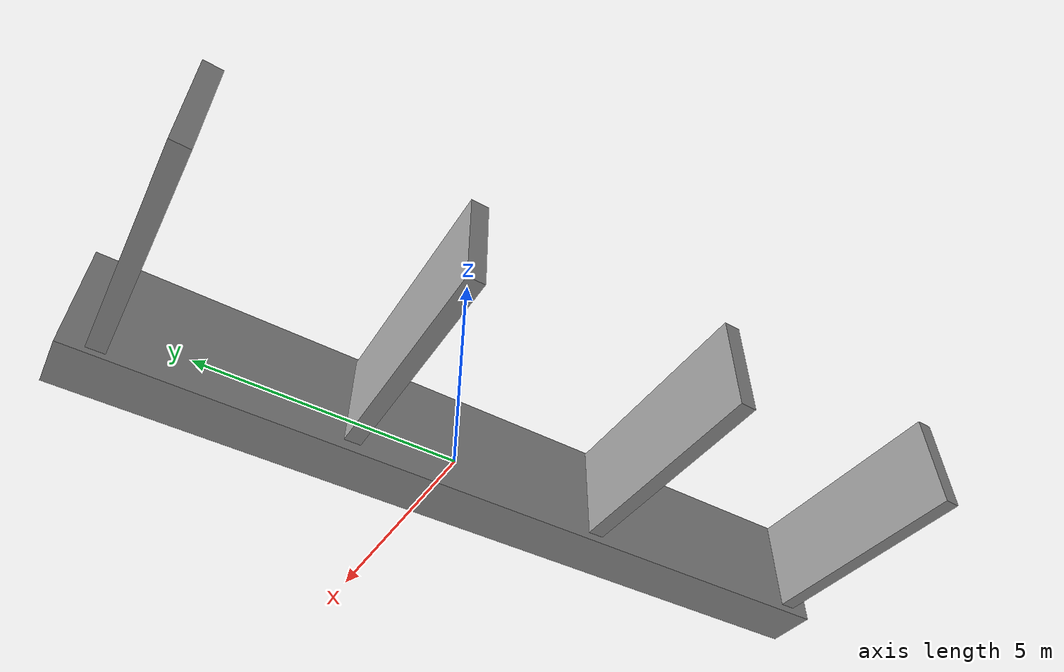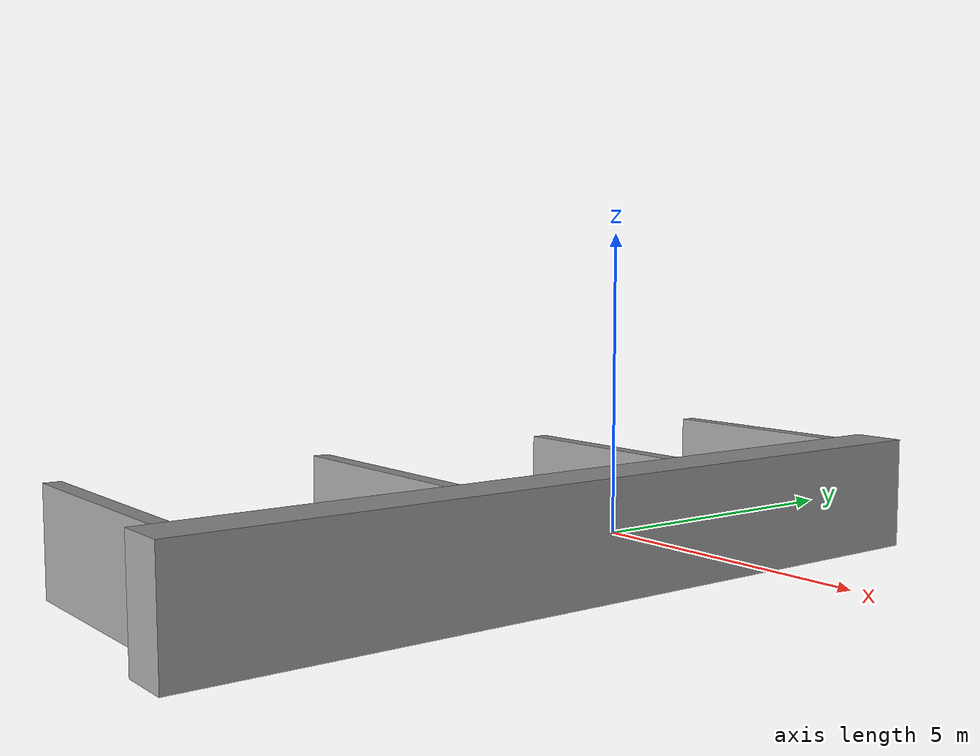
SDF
<?xml version='1.0'?>
<sdf version='1.7'>
  <model name='dock'>
    <link name='link'>
      <inertial>
        <mass>3.70329</mass>
        <inertia>
          <ixx>73.9378</ixx>
          <ixy>0</ixy>
          <ixz>0</ixz>
          <iyy>1.66506</iyy>
          <iyz>0</iyz>
          <izz>72.8899</izz>
        </inertia>
        <pose>0 0 0 0 -0 0</pose>
      </inertial>
      <self_collide>0</self_collide>
      <enable_wind>0</enable_wind>
      <kinematic>0</kinematic>
      <pose>0.013739 -0.675718 0.00372 0 -0 0</pose>
      <visual name='visual'>
        <geometry>
          <box>
            <size>1 15.3359 2.09652</size>
          </box>
        </geometry>
        <material>
          <script>
            <name>Gazebo/Grey</name>
            <uri>file://media/materials/scripts/gazebo.material</uri>
          </script>
          <shader type='pixel'/>
          <emissive>0 0 0 1</emissive>
        </material>
        <pose>0 0 0 0 -0 0</pose>
        <transparency>0</transparency>
        <cast_shadows>1</cast_shadows>
      </visual>
      <collision name='collision'>
        <laser_retro>0</laser_retro>
        <max_contacts>10</max_contacts>
        <pose>0 0 0 0 -0 0</pose>
        <geometry>
          <box>
            <size>1 15.3359 2.09652</size>
          </box>
        </geometry>
        <surface>
          <friction>
            <ode>
              <mu>1</mu>
              <mu2>1</mu2>
              <fdir1>0 0 0</fdir1>
              <slip1>0</slip1>
              <slip2>0</slip2>
            </ode>
            <torsional>
              <coefficient>1</coefficient>
              <patch_radius>0</patch_radius>
              <surface_radius>0</surface_radius>
              <use_patch_radius>1</use_patch_radius>
              <ode>
                <slip>0</slip>
              </ode>
            </torsional>
          </friction>
          <bounce>
            <restitution_coefficient>0</restitution_coefficient>
            <threshold>1e+06</threshold>
          </bounce>
          <contact>
            <collide_without_contact>0</collide_without_contact>
            <collide_without_contact_bitmask>1</collide_without_contact_bitmask>
            <collide_bitmask>1</collide_bitmask>
            <ode>
              <soft_cfm>0</soft_cfm>
              <soft_erp>0.2</soft_erp>
              <kp>1e+13</kp>
              <kd>1</kd>
              <max_vel>0.01</max_vel>
              <min_depth>0</min_depth>
            </ode>
            <bullet>
              <split_impulse>1</split_impulse>
              <split_impulse_penetration_threshold>-0.01</split_impulse_penetration_threshold>
              <soft_cfm>0</soft_cfm>
              <soft_erp>0.2</soft_erp>
              <kp>1e+13</kp>
              <kd>1</kd>
            </bullet>
          </contact>
        </surface>
      </collision>
    </link>
    <link name='link_0'>
      <inertial>
        <mass>2.59464</mass>
        <inertia>
          <ixx>0.818979</ixx>
          <ixy>0</ixy>
          <ixz>0</ixz>
          <iyy>4.9298</iyy>
          <iyz>0</iyz>
          <izz>4.15206</izz>
        </inertia>
        <pose>0 0 0 0 -0 0</pose>
      </inertial>
      <pose>-2.61845 -7.80994 0.066805 -0.005505 -0 0.003062</pose>
      <self_collide>0</self_collide>
      <enable_wind>0</enable_wind>
      <kinematic>0</kinematic>
      <visual name='visual'>
        <pose>0 0 0 0 -0 0</pose>
        <geometry>
          <box>
            <size>4.37122 0.308824 1.92155</size>
          </box>
        </geometry>
        <material>
          <lighting>1</lighting>
          <script>
            <uri>file://media/materials/scripts/gazebo.material</uri>
            <name>Gazebo/Grey</name>
          </script>
          <shader type='pixel'/>
          <emissive>0 0 0 1</emissive>
        </material>
        <transparency>0</transparency>
        <cast_shadows>1</cast_shadows>
      </visual>
      <collision name='collision'>
        <laser_retro>0</laser_retro>
        <max_contacts>10</max_contacts>
        <pose>0 0 0 0 -0 0</pose>
        <geometry>
          <box>
            <size>4.37122 0.308824 1.92155</size>
          </box>
        </geometry>
        <surface>
          <friction>
            <ode>
              <mu>1</mu>
              <mu2>1</mu2>
              <fdir1>0 0 0</fdir1>
              <slip1>0</slip1>
              <slip2>0</slip2>
            </ode>
            <torsional>
              <coefficient>1</coefficient>
              <patch_radius>0</patch_radius>
              <surface_radius>0</surface_radius>
              <use_patch_radius>1</use_patch_radius>
              <ode>
                <slip>0</slip>
              </ode>
            </torsional>
          </friction>
          <bounce>
            <restitution_coefficient>0</restitution_coefficient>
            <threshold>1e+06</threshold>
          </bounce>
          <contact>
            <collide_without_contact>0</collide_without_contact>
            <collide_without_contact_bitmask>1</collide_without_contact_bitmask>
            <collide_bitmask>1</collide_bitmask>
            <ode>
              <soft_cfm>0</soft_cfm>
              <soft_erp>0.2</soft_erp>
              <kp>1e+13</kp>
              <kd>1</kd>
              <max_vel>0.01</max_vel>
              <min_depth>0</min_depth>
            </ode>
            <bullet>
              <split_impulse>1</split_impulse>
              <split_impulse_penetration_threshold>-0.01</split_impulse_penetration_threshold>
              <soft_cfm>0</soft_cfm>
              <soft_erp>0.2</soft_erp>
              <kp>1e+13</kp>
              <kd>1</kd>
            </bullet>
          </contact>
        </surface>
      </collision>
    </link>
    <link name='link_0_clone'>
      <inertial>
        <mass>2.58337</mass>
        <inertia>
          <ixx>0.808539</ixx>
          <ixy>0</ixy>
          <ixz>0</ixz>
          <iyy>4.90149</iyy>
          <iyz>0</iyz>
          <izz>4.13402</izz>
        </inertia>
        <pose>0 0 0 0 -0 0</pose>
      </inertial>
      <pose>-2.61689 -2.87066 0.061499 -0.01101 1.7e-05 0.006124</pose>
      <self_collide>0</self_collide>
      <enable_wind>0</enable_wind>
      <kinematic>0</kinematic>
      <visual name='visual'>
        <pose>0 0 0 0 -0 0</pose>
        <geometry>
          <box>
            <size>4.37122 0.308824 1.91321</size>
          </box>
        </geometry>
        <material>
          <lighting>1</lighting>
          <script>
            <uri>file://media/materials/scripts/gazebo.material</uri>
            <name>Gazebo/Grey</name>
          </script>
          <shader type='pixel'/>
          <emissive>0 0 0 1</emissive>
        </material>
        <transparency>0</transparency>
        <cast_shadows>1</cast_shadows>
      </visual>
      <collision name='collision'>
        <laser_retro>0</laser_retro>
        <max_contacts>10</max_contacts>
        <pose>0 0 0 0 -0 0</pose>
        <geometry>
          <box>
            <size>4.37122 0.308824 1.91321</size>
          </box>
        </geometry>
        <surface>
          <friction>
            <ode>
              <mu>1</mu>
              <mu2>1</mu2>
              <fdir1>0 0 0</fdir1>
              <slip1>0</slip1>
              <slip2>0</slip2>
            </ode>
            <torsional>
              <coefficient>1</coefficient>
              <patch_radius>0</patch_radius>
              <surface_radius>0</surface_radius>
              <use_patch_radius>1</use_patch_radius>
              <ode>
                <slip>0</slip>
              </ode>
            </torsional>
          </friction>
          <bounce>
            <restitution_coefficient>0</restitution_coefficient>
            <threshold>1e+06</threshold>
          </bounce>
          <contact>
            <collide_without_contact>0</collide_without_contact>
            <collide_without_contact_bitmask>1</collide_without_contact_bitmask>
            <collide_bitmask>1</collide_bitmask>
            <ode>
              <soft_cfm>0</soft_cfm>
              <soft_erp>0.2</soft_erp>
              <kp>1e+13</kp>
              <kd>1</kd>
              <max_vel>0.01</max_vel>
              <min_depth>0</min_depth>
            </ode>
            <bullet>
              <split_impulse>1</split_impulse>
              <split_impulse_penetration_threshold>-0.01</split_impulse_penetration_threshold>
              <soft_cfm>0</soft_cfm>
              <soft_erp>0.2</soft_erp>
              <kp>1e+13</kp>
              <kd>1</kd>
            </bullet>
          </contact>
        </surface>
      </collision>
    </link>
    <link name='link_0_clone_0'>
      <inertial>
        <mass>2.4604</mass>
        <inertia>
          <ixx>0.700296</ixx>
          <ixy>0</ixy>
          <ixz>0</ixz>
          <iyy>4.59843</iyy>
          <iyz>0</iyz>
          <izz>3.93724</izz>
        </inertia>
        <pose>0 0 0 0 -0 0</pose>
      </inertial>
      <pose>-2.53674 2.17768 0.054776 -0.01101 1.7e-05 0.006124</pose>
      <self_collide>0</self_collide>
      <enable_wind>0</enable_wind>
      <kinematic>0</kinematic>
      <visual name='visual'>
        <pose>0 0 0 0 -0 0</pose>
        <geometry>
          <box>
            <size>4.37122 0.308824 1.82213</size>
          </box>
        </geometry>
        <material>
          <lighting>1</lighting>
          <script>
            <uri>file://media/materials/scripts/gazebo.material</uri>
            <name>Gazebo/Grey</name>
          </script>
          <shader type='pixel'/>
          <emissive>0 0 0 1</emissive>
        </material>
        <transparency>0</transparency>
        <cast_shadows>1</cast_shadows>
      </visual>
      <collision name='collision'>
        <laser_retro>0</laser_retro>
        <max_contacts>10</max_contacts>
        <pose>0 0 0 0 -0 0</pose>
        <geometry>
          <box>
            <size>4.37122 0.308824 1.82213</size>
          </box>
        </geometry>
        <surface>
          <friction>
            <ode>
              <mu>1</mu>
              <mu2>1</mu2>
              <fdir1>0 0 0</fdir1>
              <slip1>0</slip1>
              <slip2>0</slip2>
            </ode>
            <torsional>
              <coefficient>1</coefficient>
              <patch_radius>0</patch_radius>
              <surface_radius>0</surface_radius>
              <use_patch_radius>1</use_patch_radius>
              <ode>
                <slip>0</slip>
              </ode>
            </torsional>
          </friction>
          <bounce>
            <restitution_coefficient>0</restitution_coefficient>
            <threshold>1e+06</threshold>
          </bounce>
          <contact>
            <collide_without_contact>0</collide_without_contact>
            <collide_without_contact_bitmask>1</collide_without_contact_bitmask>
            <collide_bitmask>1</collide_bitmask>
            <ode>
              <soft_cfm>0</soft_cfm>
              <soft_erp>0.2</soft_erp>
              <kp>1e+13</kp>
              <kd>1</kd>
              <max_vel>0.01</max_vel>
              <min_depth>0</min_depth>
            </ode>
            <bullet>
              <split_impulse>1</split_impulse>
              <split_impulse_penetration_threshold>-0.01</split_impulse_penetration_threshold>
              <soft_cfm>0</soft_cfm>
              <soft_erp>0.2</soft_erp>
              <kp>1e+13</kp>
              <kd>1</kd>
            </bullet>
          </contact>
        </surface>
      </collision>
    </link>
    <link name='link_0_clone_1'>
      <inertial>
        <mass>2.62104</mass>
        <inertia>
          <ixx>0.843799</ixx>
          <ixy>0</ixy>
          <ixz>0</ixz>
          <iyy>4.99643</iyy>
          <iyz>0</iyz>
          <izz>4.1943</izz>
        </inertia>
        <pose>0 0 0 0 -0 0</pose>
      </inertial>
      <pose>-2.54607 6.41324 0.03146 -0.01101 1.7e-05 0.006124</pose>
      <self_collide>0</self_collide>
      <enable_wind>0</enable_wind>
      <kinematic>0</kinematic>
      <visual name='visual'>
        <pose>0 0 0 0 -0 0</pose>
        <geometry>
          <box>
            <size>4.37122 0.308824 1.94109</size>
          </box>
        </geometry>
        <material>
          <lighting>1</lighting>
          <script>
            <uri>file://media/materials/scripts/gazebo.material</uri>
            <name>Gazebo/Grey</name>
          </script>
          <shader type='pixel'/>
          <emissive>0 0 0 1</emissive>
        </material>
        <transparency>0</transparency>
        <cast_shadows>1</cast_shadows>
      </visual>
      <collision name='collision'>
        <laser_retro>0</laser_retro>
        <max_contacts>10</max_contacts>
        <pose>0 0 0 0 -0 0</pose>
        <geometry>
          <box>
            <size>4.37122 0.308824 1.94109</size>
          </box>
        </geometry>
        <surface>
          <friction>
            <ode>
              <mu>1</mu>
              <mu2>1</mu2>
              <fdir1>0 0 0</fdir1>
              <slip1>0</slip1>
              <slip2>0</slip2>
            </ode>
            <torsional>
              <coefficient>1</coefficient>
              <patch_radius>0</patch_radius>
              <surface_radius>0</surface_radius>
              <use_patch_radius>1</use_patch_radius>
              <ode>
                <slip>0</slip>
              </ode>
            </torsional>
          </friction>
          <bounce>
            <restitution_coefficient>0</restitution_coefficient>
            <threshold>1e+06</threshold>
          </bounce>
          <contact>
            <collide_without_contact>0</collide_without_contact>
            <collide_without_contact_bitmask>1</collide_without_contact_bitmask>
            <collide_bitmask>1</collide_bitmask>
            <ode>
              <soft_cfm>0</soft_cfm>
              <soft_erp>0.2</soft_erp>
              <kp>1e+13</kp>
              <kd>1</kd>
              <max_vel>0.01</max_vel>
              <min_depth>0</min_depth>
            </ode>
            <bullet>
              <split_impulse>1</split_impulse>
              <split_impulse_penetration_threshold>-0.01</split_impulse_penetration_threshold>
              <soft_cfm>0</soft_cfm>
              <soft_erp>0.2</soft_erp>
              <kp>1e+13</kp>
              <kd>1</kd>
            </bullet>
          </contact>
        </surface>
      </collision>
    </link>
    <joint name='link_JOINT_0' type='fixed'>
      <parent>link</parent>
      <child>link_0_clone_1</child>
      <pose>0 0 0 0 -0 0</pose>
      <physics>
        <ode>
          <limit>
            <cfm>0</cfm>
            <erp>0.2</erp>
          </limit>
          <suspension>
            <cfm>0</cfm>
            <erp>0.2</erp>
          </suspension>
        </ode>
      </physics>
    </joint>
    <joint name='link_JOINT_1' type='fixed'>
      <parent>link</parent>
      <child>link_0_clone_0</child>
      <pose>0 0 0 0 -0 0</pose>
      <physics>
        <ode>
          <limit>
            <cfm>0</cfm>
            <erp>0.2</erp>
          </limit>
          <suspension>
            <cfm>0</cfm>
            <erp>0.2</erp>
          </suspension>
        </ode>
      </physics>
    </joint>
    <joint name='link_JOINT_2' type='fixed'>
      <parent>link</parent>
      <child>link_0_clone</child>
      <pose>0 0 0 0 -0 0</pose>
      <physics>
        <ode>
          <limit>
            <cfm>0</cfm>
            <erp>0.2</erp>
          </limit>
          <suspension>
            <cfm>0</cfm>
            <erp>0.2</erp>
          </suspension>
        </ode>
      </physics>
    </joint>
    <joint name='link_JOINT_3' type='fixed'>
      <parent>link</parent>
      <child>link_0</child>
      <pose>0 0 0 0 -0 0</pose>
      <physics>
        <ode>
          <limit>
            <cfm>0</cfm>
            <erp>0.2</erp>
          </limit>
          <suspension>
            <cfm>0</cfm>
            <erp>0.2</erp>
          </suspension>
        </ode>
      </physics>
    </joint>
    <static>0</static>
    <allow_auto_disable>1</allow_auto_disable>
    <plugin name='usv_dynamics_plugin' filename='libusv_dynamics_plugin.so'>
      <bodyName>link</bodyName>
      <waterLevel>0</waterLevel>
      <waterDensity>997.8</waterDensity>
      <xDotU>0.0</xDotU>
      <yDotV>0.0</yDotV>
      <nDotR>0.0</nDotR>
      <xU>1.0</xU>
      <yV>1.0</yV>
      <zW>1.0</zW>
      <hullRadius>0.381</hullRadius>
      <boatWidth>3.1</boatWidth>
      <boatLength>6.23</boatLength>
      <length_n>10.5</length_n>
      <wave_model>ocean_waves</wave_model>
    </plugin>
  </model>
</sdf>
